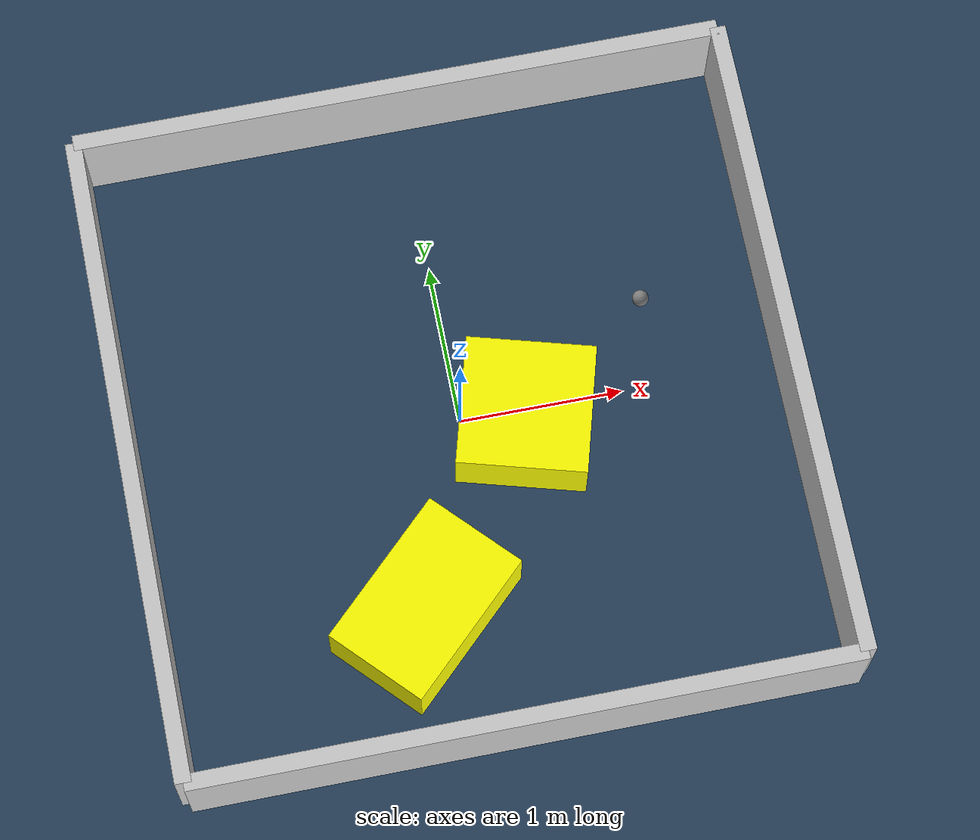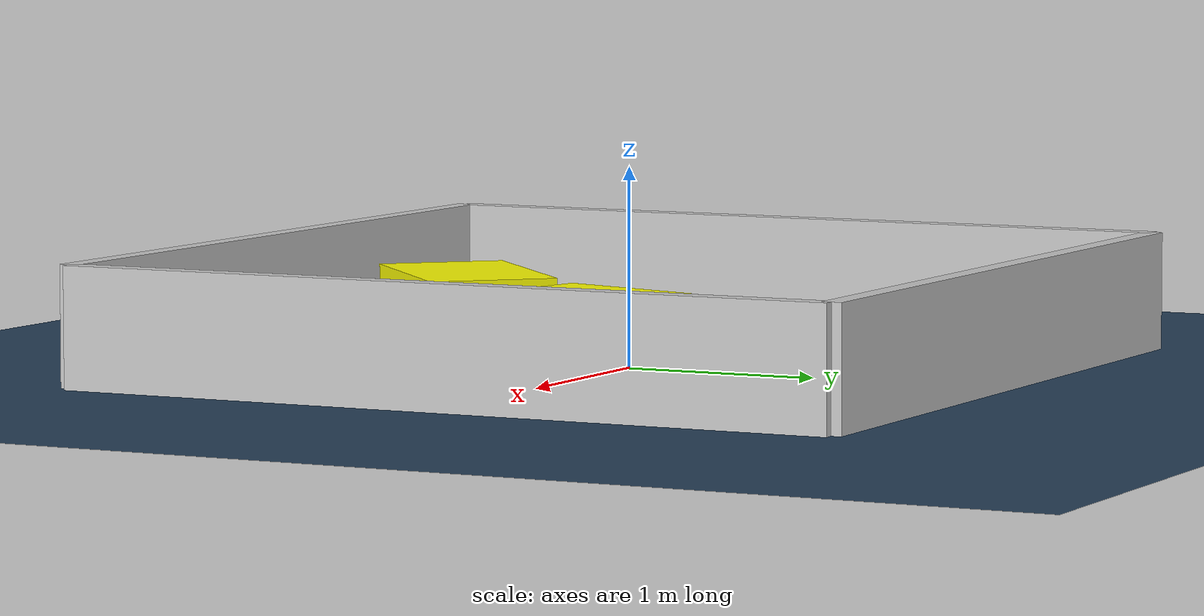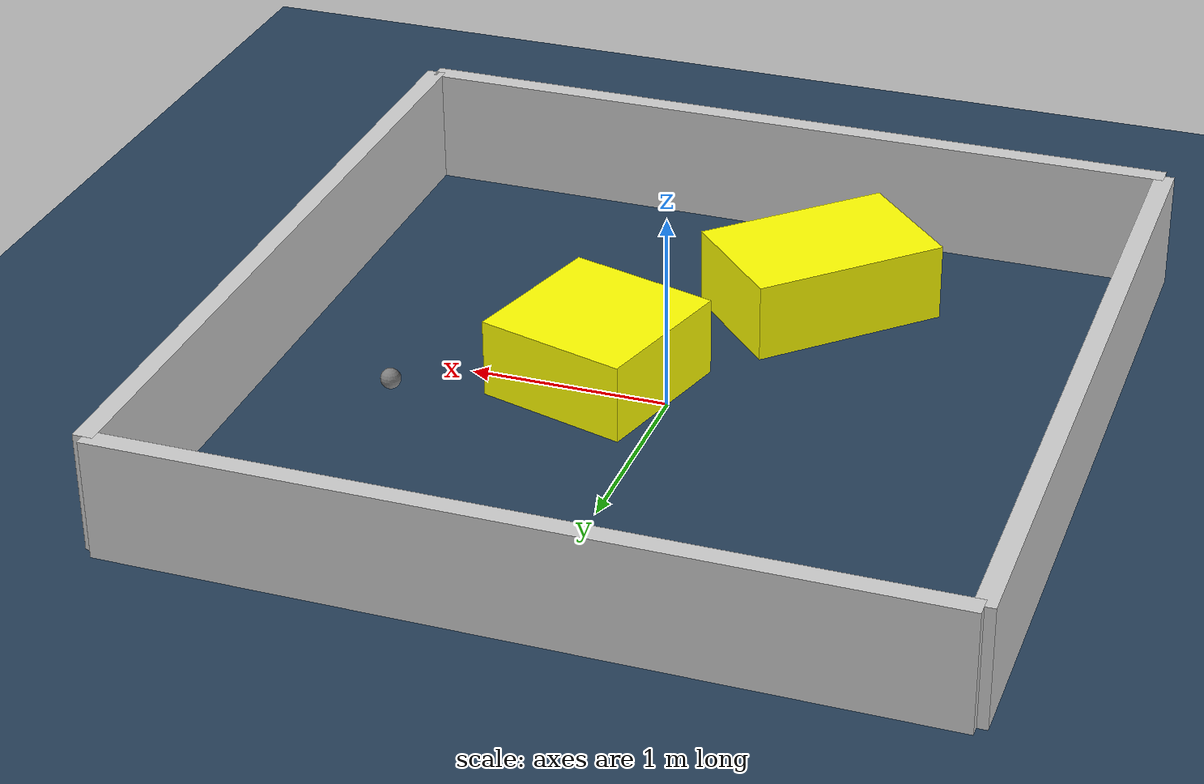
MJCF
<?xml version="1.0" ?>
<mujoco model="generated_environment">
  <option timestep="0.01" integrator="RK4" cone="elliptic"/>
  <default>
    <geom density="1"/>
  </default>
  <asset>
    <texture builtin="gradient" height="3072" rgb1="0.3 0.5 0.7" rgb2="0 0 0" type="skybox" width="512"/>
    <texture builtin="checker" height="300" mark="edge" markrgb="0.8 0.8 0.8" name="groundplane" rgb1="0.2 0.3 0.4" rgb2="0.1 0.2 0.3" type="2d" width="300"/>
    <material name="groundplane" reflectance="0.2" texrepeat="5 5" texture="groundplane" texuniform="true"/>
    <material name="robot" rgba="0.0 1.0 0.0 1"/>
  </asset>
  <worldbody>
    <light dir="0 0 -1" directional="true" pos="0 0 1.5"/>
    <geom condim="4" friction="1.0 0.005 0.001" material="groundplane" name="floor" size="0 0 0.05" type="plane"/>
    <body name="walls">
      <geom name="wall_1" condim="4" pos="-2.0 0.0 0.3" rgba="0.800000011920929 0.800000011920929 0.800000011920929 1.0" size="0.05 2.0 0.3" type="box"/>
      <geom name="wall_2" condim="4" pos="2.0 0.0 0.3" rgba="0.800000011920929 0.800000011920929 0.800000011920929 1.0" size="0.05 2.0 0.3" type="box"/>
      <geom name="wall_3" condim="4" pos="0.0 -2.0 0.3" rgba="0.800000011920929 0.800000011920929 0.800000011920929 1.0" size="2.0 0.05 0.3" type="box"/>
      <geom name="wall_4" condim="4" pos="0.0 2.0 0.3" rgba="0.800000011920929 0.800000011920929 0.800000011920929 1.0" size="2.0 0.05 0.3" type="box"/>
    </body>
    <body name="robot">
      <joint name="joint_x" type="slide" pos="0 0 0" axis="1 0 0"/>
      <joint name="joint_y" type="slide" pos="0 0 0" axis="0 1 0"/>
      <geom name="robot" type="sphere" pos="1.2160037591734754 0.4990903389263517 0.2" size="0.05" mass="5." friction="1.0 0.005 0.0001" condim="4"/>
      <site name="sensor_ball"/>
    </body>
    <body name="obstacle_1_movable">
      <geom name="obstacle_1_movable" condim="4" pos="0.38379894097524225 -0.09425755706076866 0.2" euler="0 0 254.32366861523195" friction="1.0 0.005 0.001" rgba="1 1 0 1" size="0.3966766003601747 0.39411086458005595 0.2" type="box" mass="0.1"/>
      <joint type="free"/>
    </body>
    <body name="obstacle_2_movable">
      <geom name="obstacle_2_movable" condim="4" pos="-0.43441178523475465 -1.1496705725491898 0.2" euler="0 0 43.67346509464977" friction="1.0 0.005 0.001" rgba="1 1 0 1" size="0.5108306150487821 0.3319324352608442 0.2" type="box" mass="0.1"/>
      <joint type="free"/>
    </body>
  </worldbody>
  <actuator>
    <motor name="actuator_x" joint="joint_x" gear="1" ctrlrange="-1 1"/>
    <motor name="actuator_y" joint="joint_y" gear="1" ctrlrange="-1 1"/>
  </actuator>
</mujoco>
